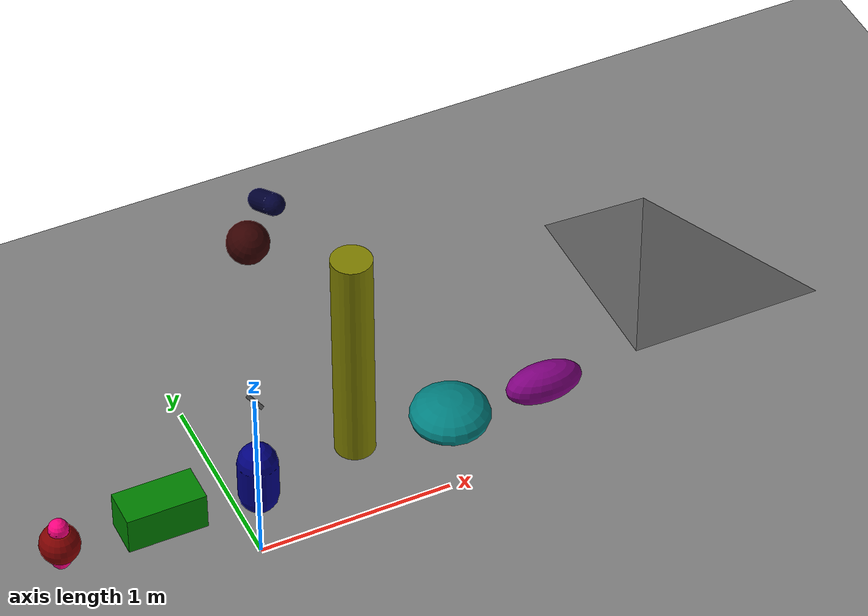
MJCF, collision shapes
<?xml version="1.0" encoding="utf-8"?>
<mujoco model="inverted_pendulum">
    <compiler angle="radian" meshdir="meshes" autolimits="true" />
    <option timestep="0.002" gravity="0 0 -9.81" wind="0 0 0" integrator="implicitfast"
        density="1.225"
        viscosity="1.8e-5" />

    <visual>
        <global realtime="1" />
        <quality shadowsize="16384" numslices="28" offsamples="4" />
        <headlight diffuse="1 1 1" specular="0.5 0.5 0.5" active="1" />
        <rgba fog="1 0 0 1" haze="1 1 1 1" />
    </visual>

    <asset>
        <mesh name="tetrahedron" vertex="0 0 0 1 0 0 0 1 0 0 0 1" />
        <mesh file="card.obj" scale="1 1 1" />
        <texture type="2d" file="./king_of_clubs.png" />
        <material name="king_of_clubs" texture="king_of_clubs" />
        <hfield name="agent_eval_gym" file="agent_eval_gym.png" size="10 10 1 1" />
        <texture type="skybox" file="../asset/desert.png"
            gridsize="3 4" gridlayout=".U..LFRB.D.." />

        <texture name="plane" type="2d" builtin="checker" rgb1=".1 .1 .1" rgb2=".9 .9 .9"
            width="512" height="512" mark="cross" markrgb=".8 .8 .8" />
        <material name="plane" reflectance="0.3" texture="plane" texrepeat="1 1" texuniform="true" />
        <material name="box" rgba="0 0.5 0 1" emission="0" />
    </asset>

    <default>
        <geom solref=".5e-4" solimp="0.9 0.99 1e-4" fluidcoef="0.5 0.25 0.5 2.0 1.0" />
        <default class="card">
            <geom type="mesh" mesh="card" mass="1.84e-4" fluidshape="ellipsoid" contype="0"
                conaffinity="0" />
        </default>
        <default class="collision">
            <geom type="box" mass="0" size="0.047 0.032 .00035" group="3" friction=".1" />
        </default>
    </default>

    <worldbody>
        <geom name="floor" pos="0 0 0" size="0 0 .1" type="plane" material="plane"
            condim="3" />
        <light directional="true" ambient=".3 .3 .3" pos="30 30 30" dir="0 -2 -1"
            diffuse=".5 .5 .5" specular=".5 .5 .5" />

        <body pos="0 0 1" euler="-45 45 0">
            <freejoint />
            <geom class="card" material="king_of_clubs" />
            <geom class="collision" />
        </body>

        <!-- sphere:球体 红色 -->
        <body pos="-1 0 .5">
            <freejoint />
            <geom type="sphere" size="0.1" rgba=".5 0 0 1" mass="1000"/>
            <site type="capsule" size="0.05 0.1" rgba="1 0 .5 1" />
        </body>

        <!-- box:方块 绿色 -->
        <body pos="-0.5 0 .5">
            <freejoint />
            <geom type="box" size=".2 0.1 0.1" material="box" density="1" contype="2"
                conaffinity="3" mass="1"/>
        </body>

        <!-- capsule:胶囊 蓝色 -->
        <body pos="0 0 .5">
            <freejoint />
            <geom type="capsule" size="0.1 0.1" rgba="0 0 .5 0.1" />
        </body>

        <!-- cylinder:圆柱体 黄色 -->
        <body pos=".5 0 .5">
            <freejoint />
            <geom type="cylinder" size="0.1" fromto="0 0 0 0 0 1.2" rgba=".5 .5 0 1" />
        </body>

        <!-- ellipsoid:椭圆1 青色 -->
        <body pos="1 0 .5">
            <freejoint />
            <geom type="ellipsoid" size="0.2 0.2 0.1" rgba="0 .5 .5 1" />
        </body>

        <!-- ellipsoid:椭圆2 紫色 -->
        <body pos="1.5 0 .5">
            <freejoint />
            <geom type="ellipsoid" size="0.2 0.1 0.1" rgba=".5 0 .5 1" />
        </body>

        <!-- tetrahedron:四面体 灰色 -->
        <body pos="2.0 0 .5">
            <freejoint />
            <geom type="mesh" mesh="tetrahedron" rgba=".5 .5 .5 1" />
        </body>

        <!-- A:物体A（组合体） 深红色球体和蓝色胶囊 -->
        <body name="A" pos="0 0 2" euler="0.5 0 0">
            <!-- 可动/不可动 -->
            <geom type="sphere" size="0.1" rgba=".2 0 0 1" />
            <body name="B" pos="0 0 0.5" euler="0.5 0 0">
                <geom type="capsule" size="0.05 0.1" rgba="0 0 .2 1" />
            </body>
        </body>

    </worldbody>
</mujoco>
